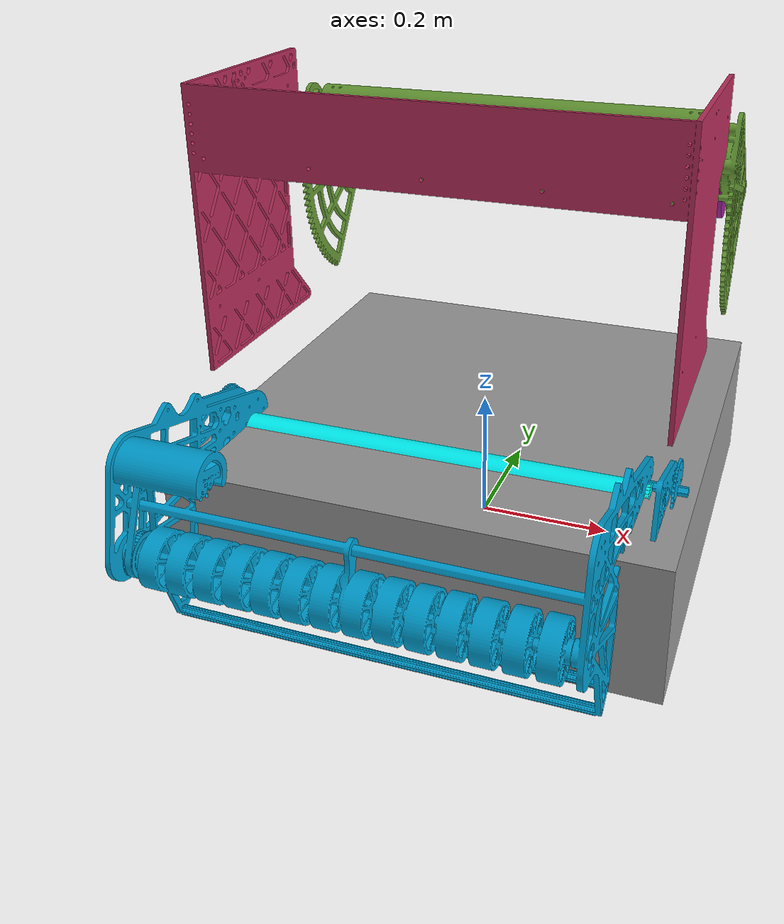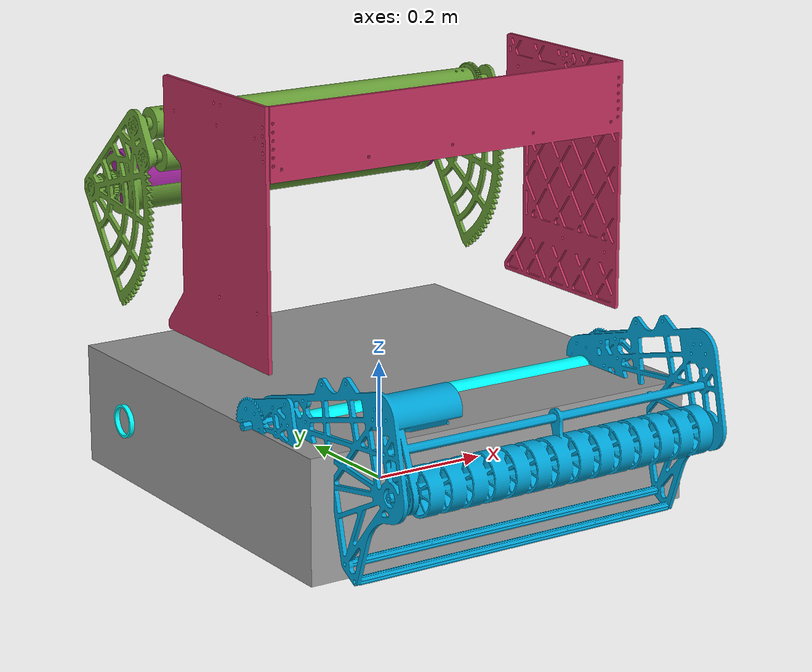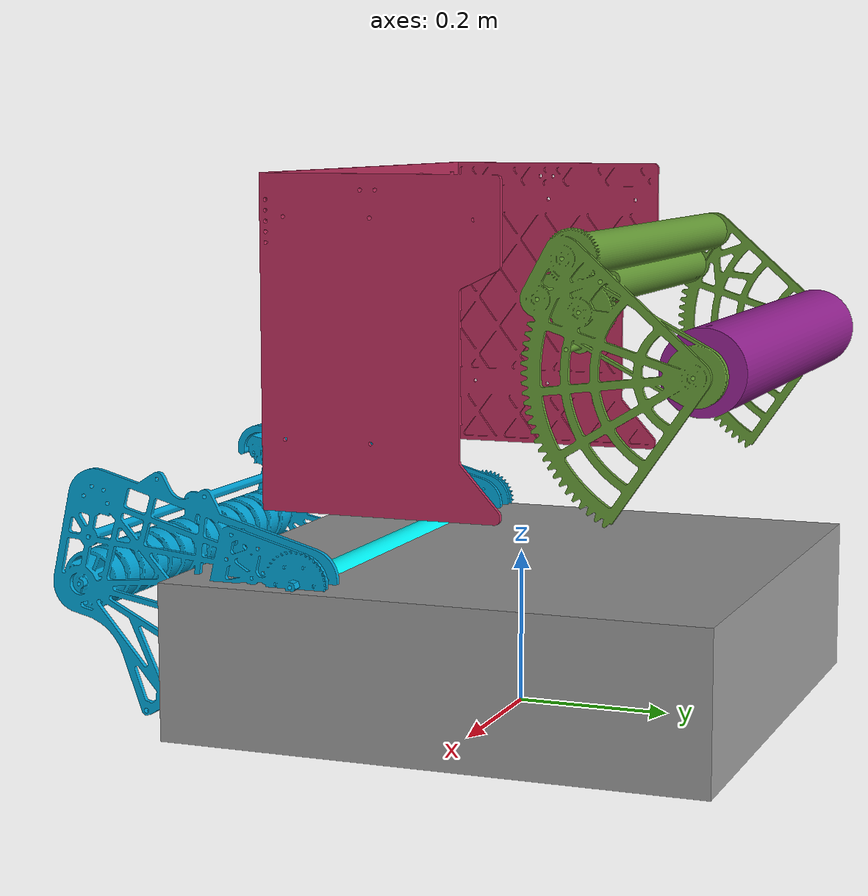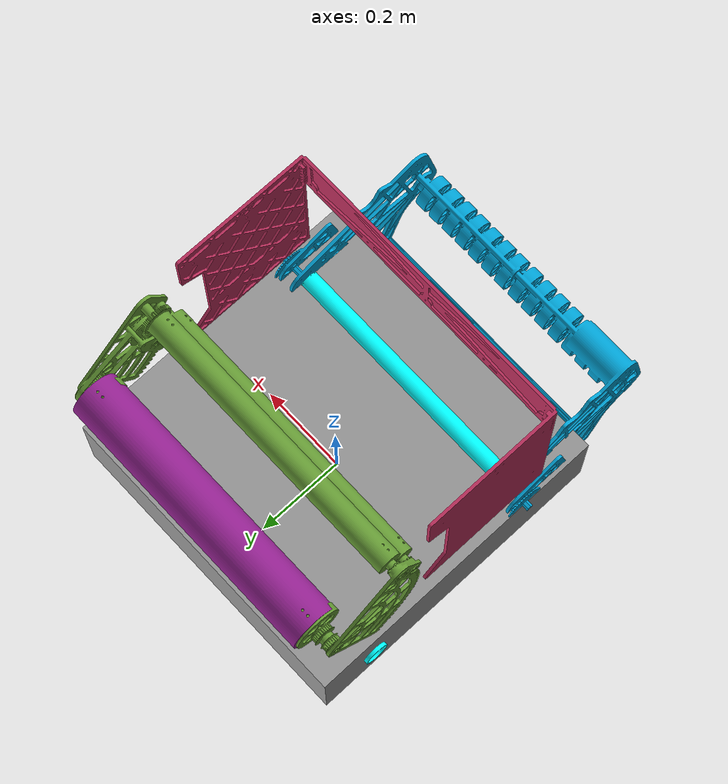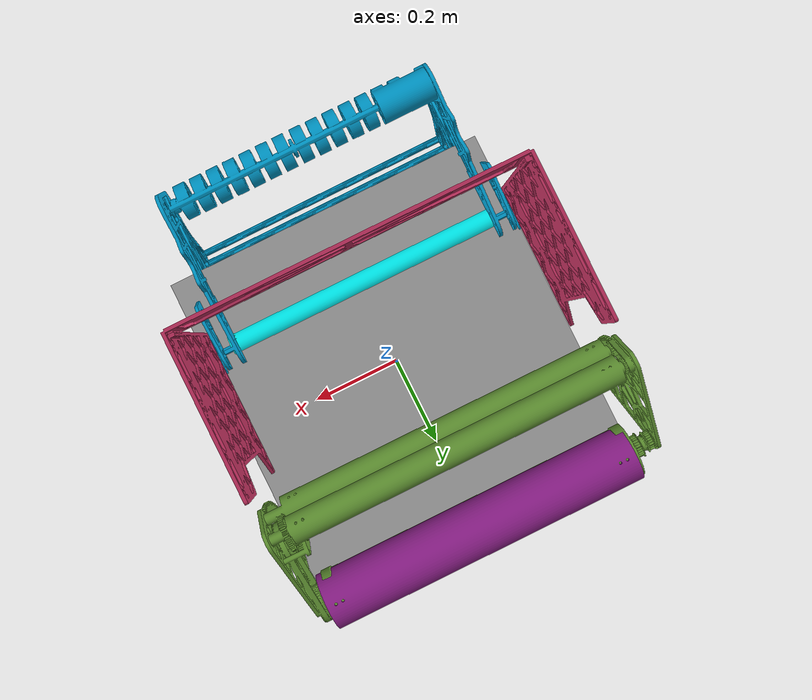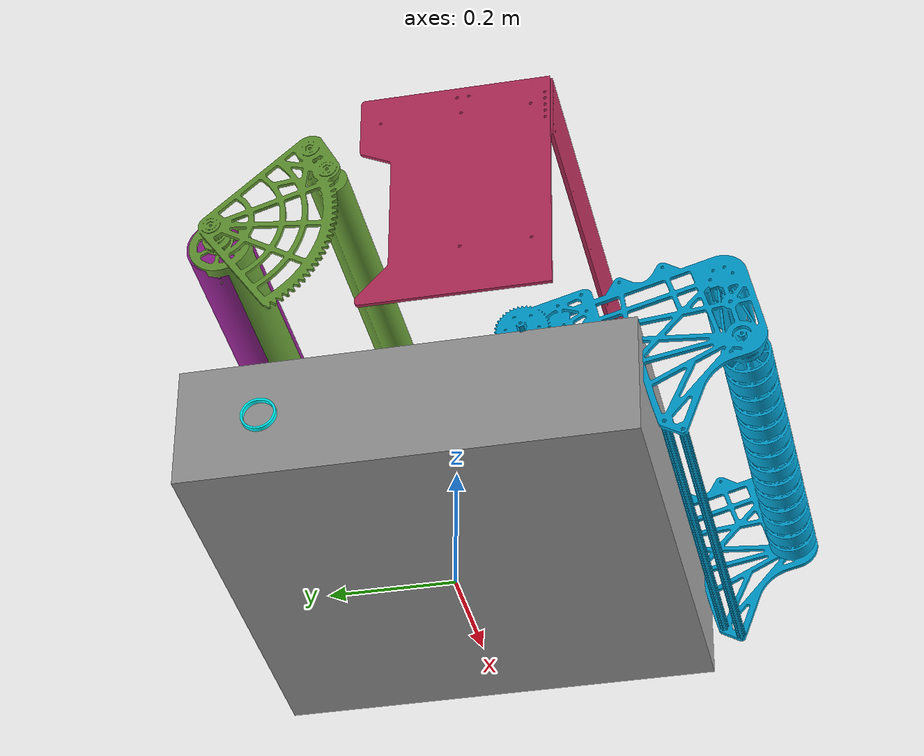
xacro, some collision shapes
<?xml version="1.0"?>
<robot name="buluk" xmlns:xacro="http://www.ros.org/wiki/xacro">

  <xacro:property name="pkg" value="package://buluk_twin/meshes"/>

  <material name="gris"><color rgba="0.6 0.6 0.6 1"/></material>
  <material name="azul"><color rgba="0 0.64 0.84 1"/></material>
  <material name="verde"><color rgba="0.4 0.61 0.21 1"/></material>
  <material name="morado"><color rgba="0.58 0.13 0.57 1"/></material>
  <material name="rojo"><color rgba="0.73 0.18 0.36 1"/></material>
  <material name="cian"><color rgba="0 0.99 1 1"/></material>

  <xacro:macro name="inercia" params="m x y z">
    <inertial>
      <mass value="${m}"/>
      <inertia ixx="${m*(y*y+z*z)/12}" iyy="${m*(x*x+z*z)/12}" izz="${m*(x*x+y*y)/12}"
               ixy="0" ixz="0" iyz="0"/>
    </inertial>
  </xacro:macro>

  <link name="world"/>
  <joint name="world_joint" type="fixed">
    <parent link="world"/><child link="base_link"/>
  </joint>

  <link name="base_link">
    <visual>
      <geometry><mesh filename="${pkg}/RobotBase.stl"/></geometry>
      <material name="gris"/>
    </visual>
    <collision>
      <origin xyz="0 0 0.1"/>
      <geometry><box size="0.7 0.7 0.2"/></geometry>
    </collision>
    <xacro:inercia m="20" x="0.7" y="0.7" z="0.2"/>
  </link>

  <joint name="intake_arm_joint" type="revolute">
    <parent link="base_link"/><child link="intake_arm"/>
    <origin xyz="0 -0.18 0.20"/>
    <axis xyz="1 0 0"/>
    <limit lower="-1.920" upper="0" effort="100" velocity="3"/>
    <dynamics damping="1"/>
  </joint>
  <link name="intake_arm">
    <visual>
      <origin xyz="0 0.18 -0.20"/>
      <geometry><mesh filename="${pkg}/IntakeArm.stl"/></geometry>
      <material name="azul"/>
    </visual>
    <collision>
      <origin xyz="0 -0.16 -0.03"/>
      <geometry><box size="0.6 0.3 0.15"/></geometry>
    </collision>
    <xacro:inercia m="2" x="0.6" y="0.3" z="0.15"/>
  </link>

  <joint name="angulator_joint" type="revolute">
    <parent link="base_link"/><child link="angulator"/>
    <origin xyz="0 0.32 0.48"/>
    <axis xyz="1 0 0"/>
    <limit lower="1.536" upper="2.409" effort="100" velocity="3"/>
    <dynamics damping="1"/>
  </joint>
  <link name="angulator">
    <visual>
      <origin xyz="0 -0.32 -0.48"/>
      <geometry><mesh filename="${pkg}/Angulator.stl"/></geometry>
      <material name="verde"/>
    </visual>
    <collision>
      <origin xyz="0 0.04 0.08"/>
      <geometry><box size="0.6 0.2 0.15"/></geometry>
    </collision>
    <xacro:inercia m="2" x="0.6" y="0.2" z="0.15"/>
  </link>

  <joint name="tambor_joint" type="continuous">
    <parent link="base_link"/><child link="tambor"/>
    <origin xyz="0 0.32 0.48"/>
    <axis xyz="1 0 0"/>
    <dynamics damping="0.1"/>
  </joint>
  <link name="tambor">
    <visual>
      <origin xyz="0 0 0" rpy="0 0 -1.5708"/>
      <geometry><mesh filename="${pkg}/Tambor.stl" scale="1.08 1.08 1.08"/></geometry>
      <material name="morado"/>
    </visual>
    <collision>
      <origin rpy="0 1.5708 0"/>
      <geometry><cylinder radius="0.05" length="0.5"/></geometry>
    </collision>
    <xacro:inercia m="0.5" x="0.5" y="0.1" z="0.1"/>
  </link>

  <joint name="box_joint" type="prismatic">
    <parent link="base_link"/><child link="box"/>
    <origin xyz="0 0.14 0.45"/>
    <axis xyz="0 1 0"/>
    <limit lower="-0.23" upper="0" effort="200" velocity="0.5"/>
    <dynamics damping="5"/>
  </joint>
  <link name="box">
    <visual>
      <origin xyz="0 0 -0.45"/>
      <geometry><mesh filename="${pkg}/Box.stl"/></geometry>
      <material name="rojo"/>
    </visual>
    <collision>
      <origin xyz="0 -0.16 0.05"/>
      <geometry><box size="0.6 0.3 0.3"/></geometry>
    </collision>
    <xacro:inercia m="3" x="0.6" y="0.3" z="0.3"/>
  </link>

  <joint name="roller1_joint" type="continuous">
    <parent link="base_link"/><child link="roller1"/>
    <origin xyz="0 -0.185 0.19"/>
    <axis xyz="1 0 0"/>
    <dynamics damping="0.1"/>
  </joint>
  <link name="roller1">
    <visual>
      <origin xyz="0 0.205 -0.21"/>
      <geometry><mesh filename="${pkg}/Roller.stl" scale="1.15 1.15 1.15"/></geometry>
      <material name="cian"/>
    </visual>
    <collision>
      <origin rpy="0 1.5708 0"/>
      <geometry><cylinder radius="0.03" length="0.5"/></geometry>
    </collision>
    <xacro:inercia m="0.3" x="0.5" y="0.06" z="0.06"/>
  </link>

  <joint name="roller2_joint" type="continuous">
    <parent link="base_link"/><child link="roller2"/>
    <origin xyz="0 0.22 0.10"/>
    <axis xyz="1 0 0"/>
    <dynamics damping="0.1"/>
  </joint>
  <link name="roller2">
    <visual>
      <origin xyz="0 0.24 -0.24"/>
      <geometry><mesh filename="${pkg}/Roller.stl" scale="1.35 1.35 1.35"/></geometry>
      <material name="cian"/>
    </visual>
    <collision>
      <origin rpy="0 1.5708 0"/>
      <geometry><cylinder radius="0.035" length="0.5"/></geometry>
    </collision>
    <xacro:inercia m="0.3" x="0.5" y="0.07" z="0.07"/>
  </link>
      <!-- ===== ros2_control: interfaz entre ROS2 y Gazebo ===== -->
  <ros2_control name="BulukSystem" type="system">
    <hardware>
      <plugin>ign_ros2_control/IgnitionSystem</plugin>
    </hardware>
    <joint name="intake_arm_joint">
      <command_interface name="position"/>
      <state_interface name="position"><param name="initial_value">0.0</param></state_interface>
      <state_interface name="velocity"/>
    </joint>
    <joint name="angulator_joint">
      <command_interface name="position"/>
      <state_interface name="position"><param name="initial_value">1.536</param></state_interface>
      <state_interface name="velocity"/>
    </joint>
    <joint name="tambor_joint">
      <command_interface name="position"/>
      <state_interface name="position"/>
      <state_interface name="velocity"/>
    </joint>
    <joint name="box_joint">
      <command_interface name="position"/>
      <state_interface name="position"><param name="initial_value">0.0</param></state_interface>
      <state_interface name="velocity"/>
    </joint>
    <joint name="roller1_joint">
      <command_interface name="position"/>
      <state_interface name="position"/>
      <state_interface name="velocity"/>
    </joint>
    <joint name="roller2_joint">
      <command_interface name="position"/>
      <state_interface name="position"/>
      <state_interface name="velocity"/>
    </joint>
  </ros2_control>

  <!-- Plugin que conecta Gazebo con ros2_control -->
  <gazebo>
    <plugin filename="libign_ros2_control-system.so" name="ign_ros2_control::IgnitionROS2ControlPlugin">
      <parameters>$(find buluk_twin)/config/controllers.yaml</parameters>
    </plugin>
  </gazebo>
</robot>
